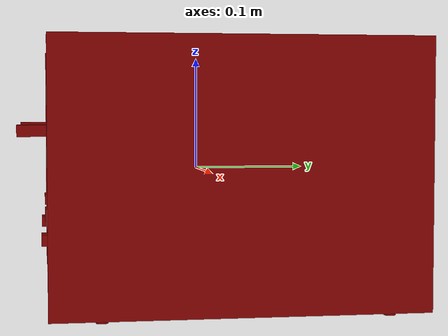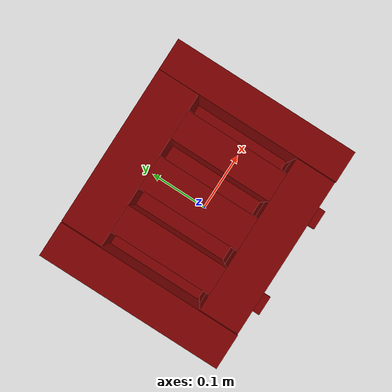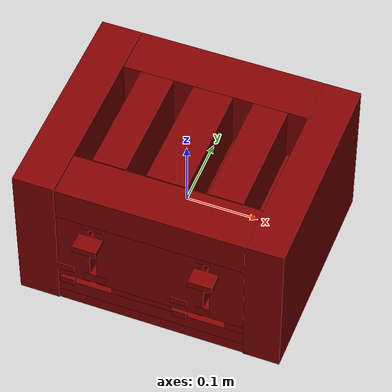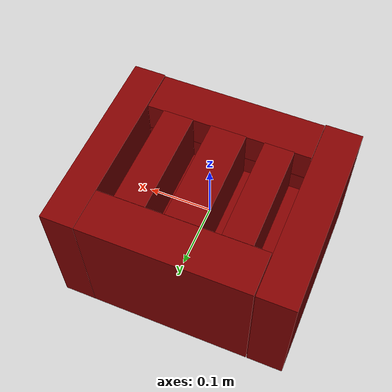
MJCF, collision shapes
<?xml version='1.0' encoding='UTF-8'?>
<mujoco model="model">
  <option timestep="0.002" gravity="0.0 0.0 -9.81"/>
  <compiler angle="radian"/>
  <asset>
    <mesh file="visuals/sideL_button_cancel.obj" name="sideL_button_cancel_vis"/>
    <mesh file="visuals/sideL_knob_doneness.obj" name="sideL_knob_doneness_vis"/>
    <mesh file="visuals/sideL_lever.obj" name="sideL_lever_vis"/>
    <mesh file="visuals/sideR_button_cancel.obj" name="sideR_button_cancel_vis"/>
    <mesh file="visuals/sideR_knob_doneness.obj" name="sideR_knob_doneness_vis"/>
    <mesh file="visuals/sideR_lever.obj" name="sideR_lever_vis"/>
    <mesh file="visuals/Body001.obj" name="Body001_vis"/>
    <mesh file="visuals/Body002.obj" name="Body002_vis"/>
    <texture file="visuals/T_BC001.png" name="Body001_material" type="2d"/>
    <material name="Body001_material" rgba="1 1 1 1.0" texture="Body001_material" shininess="0.5" specular="0.8"/>
    <texture file="visuals/T_BC001.png" name="sideL_button_cancel_material" type="2d"/>
    <material name="sideL_button_cancel_material" rgba="1 1 1 1.0" texture="sideL_button_cancel_material" shininess="0.5" specular="0.3103448502657381"/>
    <texture file="visuals/T_BC001.png" name="sideL_knob_doneness_material" type="2d"/>
    <material name="sideL_knob_doneness_material" rgba="1 1 1 1.0" texture="sideL_knob_doneness_material" shininess="0.5" specular="0.3103448502657381"/>
    <texture file="visuals/T_BC001.png" name="sideL_lever_material" type="2d"/>
    <material name="sideL_lever_material" rgba="1 1 1 1.0" texture="sideL_lever_material" shininess="0.5" specular="0.3103448502657381"/>
    <texture file="visuals/T_BC001.png" name="sideR_button_cancel_material" type="2d"/>
    <material name="sideR_button_cancel_material" rgba="1 1 1 1.0" texture="sideR_button_cancel_material" shininess="0.5" specular="0.3103448502657381"/>
    <texture file="visuals/T_BC001.png" name="sideR_knob_doneness_material" type="2d"/>
    <material name="sideR_knob_doneness_material" rgba="1 1 1 1.0" texture="sideR_knob_doneness_material" shininess="0.5" specular="0.3103448502657381"/>
    <texture file="visuals/T_BC001.png" name="sideR_lever_material" type="2d"/>
    <material name="sideR_lever_material" rgba="1 1 1 1.0" texture="sideR_lever_material" shininess="0.5" specular="0.3103448502657381"/>
    <texture file="visuals/T_BC001.png" name="Body002_material" type="2d"/>
    <material name="Body002_material" rgba="1 1 1 1.0" texture="Body002_material" shininess="0.5" specular="3"/>
  </asset>
  <default>
    <default class="visual">
      <geom conaffinity="0" contype="0" group="1" type="mesh"/>
    </default>
    <default class="collision_1">
      <geom group="0" rgba="0.5 0 0 0.5" solref="0.004 1" solimp="0.998 0.998 0.001"/>
    </default>
    <default class="collision_2">
      <geom group="0" rgba="0.5 0 0 0.5" solref="0.004 1" solimp="0.998 0.998 0.001"/>
    </default>
    <default class="collision_3">
      <geom group="0" rgba="0.5 0 0 0.5" solref="0.004 1" solimp="0.998 0.998 0.001"/>
    </default>
    <default class="collision_4">
      <geom group="0" rgba="0.5 0 0 0.5" solref="0.004 1" solimp="0.998 0.998 0.001"/>
    </default>
    <default class="collision_5">
      <geom group="0" rgba="0.5 0 0 0.5" solref="0.004 1" solimp="0.998 0.998 0.001"/>
    </default>
    <default class="collision_6">
      <geom group="0" rgba="0.5 0 0 0.5" solref="0.004 1" solimp="0.998 0.998 0.001"/>
    </default>
    <default class="collision_7">
      <geom group="0" rgba="0.5 0 0 0.5" solref="0.004 1" solimp="0.998 0.998 0.001"/>
    </default>
    <default class="collision_8">
      <geom group="0" rgba="0.5 0 0 0.5" solref="0.004 1" solimp="0.998 0.998 0.001"/>
    </default>
    <default class="spawn">
      <geom group="0" rgba="1 1 1 0.5" contype="0" conaffinity="0"/>
      <site group="0" rgba="1 1 1 0.5"/>
    </default>
    <default class="region">
      <geom group="1" conaffinity="0" contype="0" rgba="0 1 0 0" mass="0"/>
    </default>
  </default>
  <worldbody>
    <body>
      <body name="object">
        <geom mesh="Body001_vis" type="mesh" solimp="0.998 0.998 0.001" solref="0.001 1" friction="0.95 0.3 0.1" class="visual" material="Body001_material"/>
        <geom type="box" pos="-0.15742726624011993 0.012915825471282005 0.002451108768582344" size="0.028422826901078224 0.15073636174201965 0.10915911197662354" quat="1.0 0.0 0.0 0.0" class="collision_1"/>
        <geom type="box" pos="0.15744970738887787 0.012915825471282005 0.002451108768582344" size="0.025575680658221245 0.15073636174201965 0.10915911197662354" quat="1.0 0.0 0.0 0.0" class="collision_1"/>
        <geom type="box" pos="0.0019800602458417416 0.12985439598560333 0.002451108768582344" size="0.12950655817985535 0.03379778936505318 0.10915911197662354" quat="1.0 0.0 0.0 0.0" class="collision_1"/>
        <geom type="box" pos="-0.0792175829410553 0.011945940554141998 0.011153440922498703" size="0.022919220849871635 0.0839310958981514 0.10045678168535233" quat="1.0 0.0 0.0 0.0" class="collision_1"/>
        <geom type="box" pos="2.308376133441925e-05 0.011945940554141998 0.011153440922498703" size="0.02770495042204857 0.0839310958981514 0.10045678168535233" quat="1.0 0.0 0.0 0.0" class="collision_1"/>
        <geom type="box" pos="0.08044862747192383 0.011945940554141998 0.011153440922498703" size="0.02377796173095703 0.0839310958981514 0.10045678168535233" quat="1.0 0.0 0.0 0.0" class="collision_1"/>
        <geom type="box" pos="0.002134939655661583 -0.02025175467133522 -0.09706620126962662" size="0.13013973832130432 0.11612878739833832 0.009750613942742348" quat="1.0 0.0 0.0 0.0" class="collision_1"/>
        <geom type="box" pos="0.002134939655661583 -0.10463718324899673 -0.07667811959981918" size="0.13013973832130432 0.03244194760918617 0.010927493683993816" quat="1.0 0.0 0.0 0.0" class="collision_1"/>
        <geom type="box" pos="0.0015447498299181461 -0.10459443926811218 0.08488725125789642" size="0.1295495480298996 0.03248468041419983 0.025019899010658264" quat="1.0 0.0 0.0 0.0" class="collision_1"/>
        <geom type="box" pos="0.000752061780076474 -0.10406503081321716 0.0019107051193714142" size="0.07500772178173065 0.03195526450872421 0.05791382119059563" quat="1.0 0.0 0.0 0.0" class="collision_1"/>
        <geom type="box" pos="0.107742078602314 -0.10459443926811218 0.003130665048956871" size="0.023630762472748756 0.03248468041419983 0.05669386312365532" quat="1.0 0.0 0.0 0.0" class="collision_1"/>
        <geom type="box" pos="-0.10584954917430878 -0.10382004082202911 0.0019107051193714142" size="0.022509802132844925 0.03216703236103058 0.05791382119059563" quat="1.0 0.0 0.0 0.0" class="collision_1"/>
        <geom type="box" pos="-0.010623300448060036 -0.10435780137777328 -0.06052663177251816" size="0.04294619336724281 0.03224804624915123 0.004553386475890875" quat="1.0 0.0 0.0 0.0" class="collision_1"/>
        <geom type="box" pos="0.11870092898607254 -0.10459443926811218 -0.06011997535824776" size="0.013107260689139366 0.03248468041419983 0.006688314955681562" quat="1.0 0.0 0.0 0.0" class="collision_1"/>
        <geom type="box" pos="-0.07698499411344528 -0.10413768887519836 -0.046199340373277664" size="0.015368800610303879 0.03248468041419983 0.007363850716501474" quat="1.0 0.0 0.0 0.0" class="collision_1"/>
        <geom type="box" pos="0.08126544207334518 -0.10413768887519836 -0.046199340373277664" size="0.015312239527702332 0.03248468041419983 0.007363850716501474" quat="1.0 0.0 0.0 0.0" class="collision_1"/>
        <geom type="box" pos="0.08111836761236191 -0.10413768887519836 0.05556058883666992" size="0.015459313988685608 0.03248468041419983 0.004495400004088879" quat="1.0 0.0 0.0 0.0" class="collision_1"/>
        <geom type="box" pos="-0.07711538672447205 -0.10413768887519836 0.05556058883666992" size="0.015897255390882492 0.03248468041419983 0.004495400004088879" quat="1.0 0.0 0.0 0.0" class="collision_1"/>
        <geom type="cylinder" pos="-0.16226035356521606 -0.09640666097402573 -0.10892433673143387" size="0.004896887578070164 0.002551341662183404" quat="1.0 0.0 0.0 0.0" class="collision_1"/>
        <geom type="cylinder" pos="0.16216564178466797 -0.09640666097402573 -0.10892433673143387" size="0.004896887578070164 0.002551341662183404" quat="1.0 0.0 0.0 0.0" class="collision_1"/>
        <geom type="cylinder" pos="0.16216564178466797 0.1349889636039734 -0.10892433673143387" size="0.004896887578070164 0.002551341662183404" quat="1.0 0.0 0.0 0.0" class="collision_1"/>
        <geom type="cylinder" pos="-0.16226035356521606 0.1349889636039734 -0.10892433673143387" size="0.004896887578070164 0.002551341662183404" quat="1.0 0.0 0.0 0.0" class="collision_1"/>
        <body name="sideL_button_cancel">
          <joint axis="0.0 1.0 0.0" pos="-0.11641499400138855 -0.13784638047218323 -0.03743427246809006" limited="true" name="sideL_button_cancel_joint" range="0.0 0.001" type="slide" damping="1" frictionloss="1" armature=".01" stiffness="4" springref="-1"/>
          <geom mesh="sideL_button_cancel_vis" type="mesh" solimp="0.998 0.998 0.001" solref="0.001 1" friction="0.95 0.3 0.1" class="visual" material="sideL_button_cancel_material"/>
          <geom class="collision_2" type="box" pos="-0.11637920141220093 -0.13805429637432098 -0.03751402348279953" size="0.012049396522343159 0.0014285552315413952 0.004999059252440929" quat="1.0 0.0 0.0 0.0" name="sideL_button_cancel_main"/>
        </body>
        <body name="sideL_knob_doneness">
          <joint axis="1.0 0.0 0.0" pos="-0.11414897441864014 -0.12978218495845795 -0.05992436408996582" limited="true" name="sideL_knob_doneness_joint" range="0.0 0.05" type="slide" damping="0.05" armature="1" frictionloss="0.75"/>
          <geom mesh="sideL_knob_doneness_vis" type="mesh" solimp="0.998 0.998 0.001" solref="0.001 1" friction="0.95 0.3 0.1" class="visual" material="sideL_knob_doneness_material"/>
          <geom class="collision_3" type="box" pos="-0.11415667831897736 -0.13981583714485168 -0.05994628369808197" size="0.009560592472553253 0.002833350794389844 0.005086520686745644" quat="1.0 0.0 0.0 0.0" name="sideL_knob_doneness_main" friction="100 0.5 0.01"/>
          <geom type="cylinder" pos="-0.11352100968360901 -0.12739166617393494 -0.0600186251103878" size="0.0018894533859565854 0.009607632644474506" quat="0.7071067094802856 0.7071068286895752 0.0 0.0" class="collision_3" friction="100 0.5 0.01"/>
        </body>
        <body name="sideL_lever">
          <joint axis="0.0 0.0 -1.0" pos="-0.07934772968292236 -0.13922840356826782 0.036322835832834244" limited="true" name="sideL_lever_joint" range="0.0 0.075" type="slide" damping="1" frictionloss="1" armature=".1" stiffness="3" springref="-0.5"/>
          <geom class="region" name="reg_sideL_slotL" type="box" pos="-0.11568981409072876 0.013133928179740906 0.1108818631619215" size="0.010754985570907594 0.07866659557819367 0.07600007934868336"/>
          <geom class="region" name="reg_sideL_slotR" type="box" pos="-0.041929950937628746 0.013133928179740906 0.1108818631619215" size="0.010527752175927163 0.07866659557819367 0.07600007934868336"/>
          <geom mesh="sideL_lever_vis" type="mesh" solimp="0.998 0.998 0.001" solref="0.001 1" friction="0.95 0.3 0.1" class="visual" material="sideL_lever_material"/>
          <geom class="collision_4" type="box" pos="-0.07930850237607956 -0.15010011196136475 0.03633635863661766" size="0.016504444181919098 0.012149329297244549 0.004880914930254221" quat="1.0 0.0 0.0 0.0" name="sideL_lever_handle"/>
          <geom type="cylinder" pos="-0.07924050837755203 -0.12753355503082275 0.03628745675086975" size="0.002466813661158085 0.01055104285478592" quat="0.7071067094802856 0.7071068286895752 0.0 0.0" class="collision_4"/>
          <geom class="collision_4" type="box" pos="-0.11549612134695053 0.012951436452567577 0.03092200495302677" size="0.01249999925494194 0.08173847943544388 0.00047661259304732084" quat="1.0 0.0 0.0 0.0" name="sideL_slotL_floor"/>
          <geom class="collision_4" type="box" pos="-0.041988011449575424 0.012951436452567577 0.03092200495302677" size="0.01249999925494194 0.08173847943544388 0.00047661259304732084" quat="1.0 0.0 0.0 0.0" name="sideL_slotR_floor"/>
        </body>
        <body name="sideR_button_cancel">
          <joint axis="0.0 1.0 0.0" pos="0.04230264574289322 -0.13784638047218323 -0.03743429481983185" limited="true" name="sideR_button_cancel_joint" range="0.0 0.001" type="slide" damping="1" frictionloss="1" armature=".01" stiffness="4" springref="-1"/>
          <geom mesh="sideR_button_cancel_vis" type="mesh" solimp="0.998 0.998 0.001" solref="0.001 1" friction="0.95 0.3 0.1" class="visual" material="sideR_button_cancel_material"/>
          <geom class="collision_5" type="box" pos="0.04235977679491043 -0.13805429637432098 -0.03751402348279953" size="0.012049396522343159 0.0014285552315413952 0.004999059252440929" quat="1.0 0.0 0.0 0.0" name="sideR_button_cancel_main"/>
        </body>
        <body name="sideR_knob_doneness">
          <joint axis="1.0 0.0 0.0" pos="0.044298525899648666 -0.12978234887123108 -0.05992436408996582" limited="true" name="sideR_knob_doneness_joint" range="0.0 0.05" type="slide" damping="0.05" armature="1" frictionloss="0.75"/>
          <geom mesh="sideR_knob_doneness_vis" type="mesh" solimp="0.998 0.998 0.001" solref="0.001 1" friction="0.95 0.3 0.1" class="visual" material="sideR_knob_doneness_material"/>
          <geom class="collision_6" type="box" pos="0.044316455721855164 -0.13981583714485168 -0.05994628369808197" size="0.009560592472553253 0.002833350794389844 0.005086520686745644" quat="1.0 0.0 0.0 0.0" name="sideR_knob_doneness_main" friction="100 0.5 0.01"/>
          <geom type="cylinder" pos="0.044370438903570175 -0.12739166617393494 -0.0600186251103878" size="0.0018894533859565854 0.009607632644474506" quat="0.7071067094802856 0.7071068286895752 0.0 0.0" class="collision_6" friction="100 0.5 0.01"/>
        </body>
        <body name="sideR_lever">
          <joint axis="0.0 0.0 -1.0" pos="0.0801430493593216 -0.13923010230064392 0.03632010519504547" limited="true" name="sideR_lever_joint" range="0.0 0.075" type="slide" damping="1" frictionloss="1" armature=".1" stiffness="3" springref="-0.5"/>
          <geom class="region" name="reg_sideR_slotL" type="box" pos="0.04349844716489315 0.013133928179740906 0.1108818631619215" size="0.010703563526272775 0.07866659557819367 0.07600007934868336"/>
          <geom class="region" name="reg_sideR_slotR" type="box" pos="0.11673378199338913 0.013133928179740906 0.1108818631619215" size="0.010628109633922578 0.07866659557819367 0.07600007934868336"/>
          <geom mesh="sideR_lever_vis" type="mesh" solimp="0.998 0.998 0.001" solref="0.001 1" friction="0.95 0.3 0.1" class="visual" material="sideR_lever_material"/>
          <geom class="collision_7" type="box" pos="0.08009845018386841 -0.15010011196136475 0.03633635863661766" size="0.016504444181919098 0.012149329297244549 0.004880914930254221" quat="1.0 0.0 0.0 0.0" name="sideR_lever_handle"/>
          <geom type="cylinder" pos="0.08016644418239594 -0.12753355503082275 0.03628745675086975" size="0.002466813661158085 0.01055104285478592" quat="0.7071067094802856 0.7071068286895752 0.0 0.0" class="collision_7"/>
          <geom class="collision_7" type="box" pos="0.0427587665617466 0.012951436452567577 0.03092200495302677" size="0.01249999925494194 0.08173847943544388 0.00047661259304732084" quat="1.0 0.0 0.0 0.0" name="sideR_slotL_floor"/>
          <geom class="collision_7" type="box" pos="0.11821363121271133 0.012951436452567577 0.03092200495302677" size="0.01249999925494194 0.08173847943544388 0.00047661259304732084" quat="1.0 0.0 0.0 0.0" name="sideR_slotR_floor"/>
        </body>
        <body name="Body002">
          <geom mesh="Body002_vis" type="mesh" solimp="0.998 0.998 0.001" solref="0.001 1" friction="0.95 0.3 0.1" class="visual" material="Body002_material"/>
        </body>
        <geom class="region" name="reg_main" type="box" pos="3.725290298461914e-09 0.012827321887016296 0.0" size="0.1839766482114792 0.15034466779232025 0.11241440272331238"/>
      </body>
    </body>
  </worldbody>
  <actuator>
    <motor name="sideL_button_cancel_joint_actuator" joint="sideL_button_cancel_joint" gear="0.5"/>
    <motor name="sideL_knob_doneness_joint_actuator" joint="sideL_knob_doneness_joint" gear="1"/>
    <motor name="sideL_lever_joint_actuator" joint="sideL_lever_joint" gear="2"/>
    <motor name="sideR_button_cancel_joint_actuator" joint="sideR_button_cancel_joint" gear="0.5"/>
    <motor name="sideR_knob_doneness_joint_actuator" joint="sideR_knob_doneness_joint" gear="1"/>
    <motor name="sideR_lever_joint_actuator" joint="sideR_lever_joint" gear="2"/>
  </actuator>
</mujoco>
